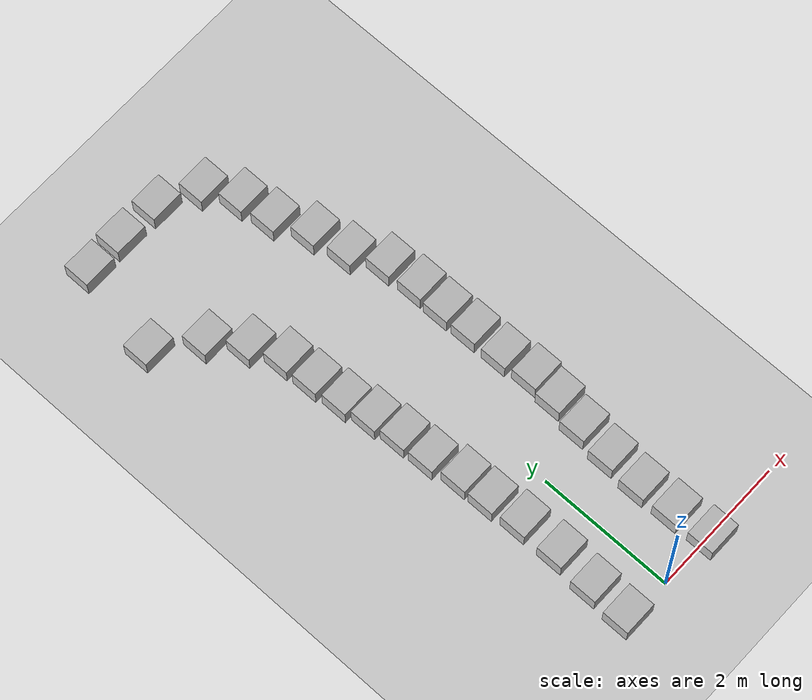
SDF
<sdf version="1.10">
 <world name="empty">
  <model name="ground_plane">
   <static>true</static>
   <link name="link">
    <collision name="collision">
     <geometry><plane><normal>0 0 1</normal><size>100 100</size></plane></geometry>
    </collision>
    <visual name="visual">
     <geometry><plane><normal>0 0 1</normal><size>100 100</size></plane></geometry>
     <material>
      <ambient>0.800000012 0.800000012 0.800000012 1</ambient>
      <diffuse>0.800000012 0.800000012 0.800000012 1</diffuse>
      <specular>0.800000012 0.800000012 0.800000012 1</specular>
     </material>
    </visual>
    <inertial>
     <mass>1</mass>
     <inertia><ixx>1</ixx><ixy>0</ixy><ixz>0</ixz><iyy>1</iyy><iyz>0</iyz><izz>1</izz></inertia>
    </inertial>
   </link>
  </model>
  <model name="cardboard_box">
   <pose>0.85478054980913054 -0.014551958283302554 0.14999943493130527 -2.4298152294027702e-19 6.8969971186888291e-19 1.2039838720076909e-19</pose>
   <link name="link">
    <inertial>
     <mass>2</mass>
     <inertia>
      <ixx>0.041666666999999998</ixx>
      <ixy>0</ixy>
      <ixz>0</ixz>
      <iyy>0.056666666999999997</iyy>
      <iyz>0</iyz>
      <izz>0.068333332999999996</izz>
     </inertia>
    </inertial>
    <collision name="collision">
     <geometry><box><size>0.5 0.40000000000000002 0.29999999999999999</size></box></geometry>
     <surface>
      <friction><ode><mu>1</mu><mu2>1</mu2></ode></friction>
      <contact>
       <ode><kp>10000000</kp><kd>1</kd><min_depth>0.001</min_depth><max_vel>0.10000000000000001</max_vel></ode>
      </contact>
     </surface>
    </collision>
    <visual name="visual">
     <pose>0 0 -0.14999999999999999 0 0 0</pose>
     <geometry>
      <mesh>
       <uri>file:///home/szu/slash_ws/src/slash_sim/gz_models/cardboard_box/model://cardboard_box/meshes/cardboard_box.dae</uri>
       <scale>1.2593189600000001 1.0074551679999999 0.75559137600000004</scale>
      </mesh>
     </geometry>
    </visual>
   </link>
   <static>false</static>
  </model>
  <model name="cardboard_box_46">
   <pose>-1.7935884309886367 8.2187235137395263 0.14999900262897667 -2.2937622448734657e-19 6.9275665197937102e-19 1.1971996887461812e-19</pose>
   <link name="link">
    <inertial>
     <mass>2</mass>
     <inertia>
      <ixx>0.041666666999999998</ixx>
      <ixy>0</ixy>
      <ixz>0</ixz>
      <iyy>0.056666666999999997</iyy>
      <iyz>0</iyz>
      <izz>0.068333332999999996</izz>
     </inertia>
    </inertial>
    <collision name="collision">
     <geometry><box><size>0.5 0.40000000000000002 0.29999999999999999</size></box></geometry>
     <surface>
      <friction><ode><mu>1</mu><mu2>1</mu2></ode></friction>
      <contact>
       <ode><kp>10000000</kp><kd>1</kd><min_depth>0.001</min_depth><max_vel>0.10000000000000001</max_vel></ode>
      </contact>
     </surface>
    </collision>
    <visual name="visual">
     <pose>0 0 -0.14999999999999999 0 0 0</pose>
     <geometry>
      <mesh>
       <uri>file:///home/szu/slash_ws/src/slash_sim/gz_models/cardboard_box/model://cardboard_box/meshes/cardboard_box.dae</uri>
       <scale>1.2593189600000001 1.0074551679999999 0.75559137600000004</scale>
      </mesh>
     </geometry>
    </visual>
   </link>
   <static>false</static>
  </model>
  <model name="cardboard_box_47">
   <pose>-1.2087740837786454 8.2336861489213327 0.14999900262897667 -2.4617464612000854e-19 6.9865286270579585e-19 1.2102648454318151e-19</pose>
   <link name="link">
    <inertial>
     <mass>2</mass>
     <inertia>
      <ixx>0.041666666999999998</ixx>
      <ixy>0</ixy>
      <ixz>0</ixz>
      <iyy>0.056666666999999997</iyy>
      <iyz>0</iyz>
      <izz>0.068333332999999996</izz>
     </inertia>
    </inertial>
    <collision name="collision">
     <geometry><box><size>0.5 0.40000000000000002 0.29999999999999999</size></box></geometry>
     <surface>
      <friction><ode><mu>1</mu><mu2>1</mu2></ode></friction>
      <contact>
       <ode><kp>10000000</kp><kd>1</kd><min_depth>0.001</min_depth><max_vel>0.10000000000000001</max_vel></ode>
      </contact>
     </surface>
    </collision>
    <visual name="visual">
     <pose>0 0 -0.14999999999999999 0 0 0</pose>
     <geometry>
      <mesh>
       <uri>file:///home/szu/slash_ws/src/slash_sim/gz_models/cardboard_box/model://cardboard_box/meshes/cardboard_box.dae</uri>
       <scale>1.2593189600000001 1.0074551679999999 0.75559137600000004</scale>
      </mesh>
     </geometry>
    </visual>
   </link>
   <static>false</static>
  </model>
  <model name="cardboard_box_48">
   <pose>-0.56632677369783013 8.2121585961199006 0.14999900262897667 -2.4617464612000854e-19 6.9865286270579585e-19 1.2102648454318151e-19</pose>
   <link name="link">
    <inertial>
     <mass>2</mass>
     <inertia>
      <ixx>0.041666666999999998</ixx>
      <ixy>0</ixy>
      <ixz>0</ixz>
      <iyy>0.056666666999999997</iyy>
      <iyz>0</iyz>
      <izz>0.068333332999999996</izz>
     </inertia>
    </inertial>
    <collision name="collision">
     <geometry><box><size>0.5 0.40000000000000002 0.29999999999999999</size></box></geometry>
     <surface>
      <friction><ode><mu>1</mu><mu2>1</mu2></ode></friction>
      <contact>
       <ode><kp>10000000</kp><kd>1</kd><min_depth>0.001</min_depth><max_vel>0.10000000000000001</max_vel></ode>
      </contact>
     </surface>
    </collision>
    <visual name="visual">
     <pose>0 0 -0.14999999999999999 0 0 0</pose>
     <geometry>
      <mesh>
       <uri>file:///home/szu/slash_ws/src/slash_sim/gz_models/cardboard_box/model://cardboard_box/meshes/cardboard_box.dae</uri>
       <scale>1.2593189600000001 1.0074551679999999 0.75559137600000004</scale>
      </mesh>
     </geometry>
    </visual>
   </link>
   <static>false</static>
  </model>
  <model name="cardboard_box_49">
   <pose>0.021360092127295394 7.9338331670076769 0.14999900262897667 -2.4395242167865708e-19 6.9722025691374854e-19 1.1980135226730827e-19</pose>
   <link name="link">
    <inertial>
     <mass>2</mass>
     <inertia>
      <ixx>0.041666666999999998</ixx>
      <ixy>0</ixy>
      <ixz>0</ixz>
      <iyy>0.056666666999999997</iyy>
      <iyz>0</iyz>
      <izz>0.068333332999999996</izz>
     </inertia>
    </inertial>
    <collision name="collision">
     <geometry><box><size>0.5 0.40000000000000002 0.29999999999999999</size></box></geometry>
     <surface>
      <friction><ode><mu>1</mu><mu2>1</mu2></ode></friction>
      <contact>
       <ode><kp>10000000</kp><kd>1</kd><min_depth>0.001</min_depth><max_vel>0.10000000000000001</max_vel></ode>
      </contact>
     </surface>
    </collision>
    <visual name="visual">
     <pose>0 0 -0.14999999999999999 0 0 0</pose>
     <geometry>
      <mesh>
       <uri>file:///home/szu/slash_ws/src/slash_sim/gz_models/cardboard_box/model://cardboard_box/meshes/cardboard_box.dae</uri>
       <scale>1.2593189600000001 1.0074551679999999 0.75559137600000004</scale>
      </mesh>
     </geometry>
    </visual>
   </link>
   <static>false</static>
  </model>
  <model name="cardboard_box_50">
   <pose>0.26269218032713981 7.4564456483916279 0.14999900262897667 -2.3882218747492828e-19 7.0060126461846494e-19 1.2009065340730555e-19</pose>
   <link name="link">
    <inertial>
     <mass>2</mass>
     <inertia>
      <ixx>0.041666666999999998</ixx>
      <ixy>0</ixy>
      <ixz>0</ixz>
      <iyy>0.056666666999999997</iyy>
      <iyz>0</iyz>
      <izz>0.068333332999999996</izz>
     </inertia>
    </inertial>
    <collision name="collision">
     <geometry><box><size>0.5 0.40000000000000002 0.29999999999999999</size></box></geometry>
     <surface>
      <friction><ode><mu>1</mu><mu2>1</mu2></ode></friction>
      <contact>
       <ode><kp>10000000</kp><kd>1</kd><min_depth>0.001</min_depth><max_vel>0.10000000000000001</max_vel></ode>
      </contact>
     </surface>
    </collision>
    <visual name="visual">
     <pose>0 0 -0.14999999999999999 0 0 0</pose>
     <geometry>
      <mesh>
       <uri>file:///home/szu/slash_ws/src/slash_sim/gz_models/cardboard_box/model://cardboard_box/meshes/cardboard_box.dae</uri>
       <scale>1.2593189600000001 1.0074551679999999 0.75559137600000004</scale>
      </mesh>
     </geometry>
    </visual>
   </link>
   <static>false</static>
  </model>
  <model name="cardboard_box_51">
   <pose>0.33874788278657286 6.9608852373941721 0.14999900262897667 -2.3882218747492828e-19 7.0060126461846494e-19 1.2009065340730555e-19</pose>
   <link name="link">
    <inertial>
     <mass>2</mass>
     <inertia>
      <ixx>0.041666666999999998</ixx>
      <ixy>0</ixy>
      <ixz>0</ixz>
      <iyy>0.056666666999999997</iyy>
      <iyz>0</iyz>
      <izz>0.068333332999999996</izz>
     </inertia>
    </inertial>
    <collision name="collision">
     <geometry><box><size>0.5 0.40000000000000002 0.29999999999999999</size></box></geometry>
     <surface>
      <friction><ode><mu>1</mu><mu2>1</mu2></ode></friction>
      <contact>
       <ode><kp>10000000</kp><kd>1</kd><min_depth>0.001</min_depth><max_vel>0.10000000000000001</max_vel></ode>
      </contact>
     </surface>
    </collision>
    <visual name="visual">
     <pose>0 0 -0.14999999999999999 0 0 0</pose>
     <geometry>
      <mesh>
       <uri>file:///home/szu/slash_ws/src/slash_sim/gz_models/cardboard_box/model://cardboard_box/meshes/cardboard_box.dae</uri>
       <scale>1.2593189600000001 1.0074551679999999 0.75559137600000004</scale>
      </mesh>
     </geometry>
    </visual>
   </link>
   <static>false</static>
  </model>
  <model name="cardboard_box_52">
   <pose>0.5440949118479681 6.4434636809012735 0.14999900262897667 -2.3882218747492828e-19 7.0060126461846494e-19 1.2009065340730555e-19</pose>
   <link name="link">
    <inertial>
     <mass>2</mass>
     <inertia>
      <ixx>0.041666666999999998</ixx>
      <ixy>0</ixy>
      <ixz>0</ixz>
      <iyy>0.056666666999999997</iyy>
      <iyz>0</iyz>
      <izz>0.068333332999999996</izz>
     </inertia>
    </inertial>
    <collision name="collision">
     <geometry><box><size>0.5 0.40000000000000002 0.29999999999999999</size></box></geometry>
     <surface>
      <friction><ode><mu>1</mu><mu2>1</mu2></ode></friction>
      <contact>
       <ode><kp>10000000</kp><kd>1</kd><min_depth>0.001</min_depth><max_vel>0.10000000000000001</max_vel></ode>
      </contact>
     </surface>
    </collision>
    <visual name="visual">
     <pose>0 0 -0.14999999999999999 0 0 0</pose>
     <geometry>
      <mesh>
       <uri>file:///home/szu/slash_ws/src/slash_sim/gz_models/cardboard_box/model://cardboard_box/meshes/cardboard_box.dae</uri>
       <scale>1.2593189600000001 1.0074551679999999 0.75559137600000004</scale>
      </mesh>
     </geometry>
    </visual>
   </link>
   <static>false</static>
  </model>
  <model name="cardboard_box_53">
   <pose>0.65526486721253629 5.9114579428692835 0.14999900262897667 -2.3882218747492828e-19 7.0060126461846494e-19 1.2009065340730555e-19</pose>
   <link name="link">
    <inertial>
     <mass>2</mass>
     <inertia>
      <ixx>0.041666666999999998</ixx>
      <ixy>0</ixy>
      <ixz>0</ixz>
      <iyy>0.056666666999999997</iyy>
      <iyz>0</iyz>
      <izz>0.068333332999999996</izz>
     </inertia>
    </inertial>
    <collision name="collision">
     <geometry><box><size>0.5 0.40000000000000002 0.29999999999999999</size></box></geometry>
     <surface>
      <friction><ode><mu>1</mu><mu2>1</mu2></ode></friction>
      <contact>
       <ode><kp>10000000</kp><kd>1</kd><min_depth>0.001</min_depth><max_vel>0.10000000000000001</max_vel></ode>
      </contact>
     </surface>
    </collision>
    <visual name="visual">
     <pose>0 0 -0.14999999999999999 0 0 0</pose>
     <geometry>
      <mesh>
       <uri>file:///home/szu/slash_ws/src/slash_sim/gz_models/cardboard_box/model://cardboard_box/meshes/cardboard_box.dae</uri>
       <scale>1.2593189600000001 1.0074551679999999 0.75559137600000004</scale>
      </mesh>
     </geometry>
    </visual>
   </link>
   <static>false</static>
  </model>
  <model name="cardboard_box_54">
   <pose>0.87551529019741647 5.4383617470887007 0.14999900262897667 -2.5359663706721442e-19 6.9509327183405399e-19 1.1976656697632282e-19</pose>
   <link name="link">
    <inertial>
     <mass>2</mass>
     <inertia>
      <ixx>0.041666666999999998</ixx>
      <ixy>0</ixy>
      <ixz>0</ixz>
      <iyy>0.056666666999999997</iyy>
      <iyz>0</iyz>
      <izz>0.068333332999999996</izz>
     </inertia>
    </inertial>
    <collision name="collision">
     <geometry><box><size>0.5 0.40000000000000002 0.29999999999999999</size></box></geometry>
     <surface>
      <friction><ode><mu>1</mu><mu2>1</mu2></ode></friction>
      <contact>
       <ode><kp>10000000</kp><kd>1</kd><min_depth>0.001</min_depth><max_vel>0.10000000000000001</max_vel></ode>
      </contact>
     </surface>
    </collision>
    <visual name="visual">
     <pose>0 0 -0.14999999999999999 0 0 0</pose>
     <geometry>
      <mesh>
       <uri>file:///home/szu/slash_ws/src/slash_sim/gz_models/cardboard_box/model://cardboard_box/meshes/cardboard_box.dae</uri>
       <scale>1.2593189600000001 1.0074551679999999 0.75559137600000004</scale>
      </mesh>
     </geometry>
    </visual>
   </link>
   <static>false</static>
  </model>
  <model name="cardboard_box_55">
   <pose>0.91816519293624421 4.9305026438201534 0.14999900262897667 -2.3882218747492828e-19 7.0060126461846494e-19 1.2009065340730555e-19</pose>
   <link name="link">
    <inertial>
     <mass>2</mass>
     <inertia>
      <ixx>0.041666666999999998</ixx>
      <ixy>0</ixy>
      <ixz>0</ixz>
      <iyy>0.056666666999999997</iyy>
      <iyz>0</iyz>
      <izz>0.068333332999999996</izz>
     </inertia>
    </inertial>
    <collision name="collision">
     <geometry><box><size>0.5 0.40000000000000002 0.29999999999999999</size></box></geometry>
     <surface>
      <friction><ode><mu>1</mu><mu2>1</mu2></ode></friction>
      <contact>
       <ode><kp>10000000</kp><kd>1</kd><min_depth>0.001</min_depth><max_vel>0.10000000000000001</max_vel></ode>
      </contact>
     </surface>
    </collision>
    <visual name="visual">
     <pose>0 0 -0.14999999999999999 0 0 0</pose>
     <geometry>
      <mesh>
       <uri>file:///home/szu/slash_ws/src/slash_sim/gz_models/cardboard_box/model://cardboard_box/meshes/cardboard_box.dae</uri>
       <scale>1.2593189600000001 1.0074551679999999 0.75559137600000004</scale>
      </mesh>
     </geometry>
    </visual>
   </link>
   <static>false</static>
  </model>
  <model name="cardboard_box_56">
   <pose>0.91309613807656531 4.476514660825389 0.14999900262897667 -2.5359663706721442e-19 6.9509327183405399e-19 1.1976656697632282e-19</pose>
   <link name="link">
    <inertial>
     <mass>2</mass>
     <inertia>
      <ixx>0.041666666999999998</ixx>
      <ixy>0</ixy>
      <ixz>0</ixz>
      <iyy>0.056666666999999997</iyy>
      <iyz>0</iyz>
      <izz>0.068333332999999996</izz>
     </inertia>
    </inertial>
    <collision name="collision">
     <geometry><box><size>0.5 0.40000000000000002 0.29999999999999999</size></box></geometry>
     <surface>
      <friction><ode><mu>1</mu><mu2>1</mu2></ode></friction>
      <contact>
       <ode><kp>10000000</kp><kd>1</kd><min_depth>0.001</min_depth><max_vel>0.10000000000000001</max_vel></ode>
      </contact>
     </surface>
    </collision>
    <visual name="visual">
     <pose>0 0 -0.14999999999999999 0 0 0</pose>
     <geometry>
      <mesh>
       <uri>file:///home/szu/slash_ws/src/slash_sim/gz_models/cardboard_box/model://cardboard_box/meshes/cardboard_box.dae</uri>
       <scale>1.2593189600000001 1.0074551679999999 0.75559137600000004</scale>
      </mesh>
     </geometry>
    </visual>
   </link>
   <static>false</static>
  </model>
  <model name="cardboard_box_57">
   <pose>0.93159236528382805 4.0141731291629892 0.14999900262897667 -2.3882218747492828e-19 7.0060126461846494e-19 1.2009065340730555e-19</pose>
   <link name="link">
    <inertial>
     <mass>2</mass>
     <inertia>
      <ixx>0.041666666999999998</ixx>
      <ixy>0</ixy>
      <ixz>0</ixz>
      <iyy>0.056666666999999997</iyy>
      <iyz>0</iyz>
      <izz>0.068333332999999996</izz>
     </inertia>
    </inertial>
    <collision name="collision">
     <geometry><box><size>0.5 0.40000000000000002 0.29999999999999999</size></box></geometry>
     <surface>
      <friction><ode><mu>1</mu><mu2>1</mu2></ode></friction>
      <contact>
       <ode><kp>10000000</kp><kd>1</kd><min_depth>0.001</min_depth><max_vel>0.10000000000000001</max_vel></ode>
      </contact>
     </surface>
    </collision>
    <visual name="visual">
     <pose>0 0 -0.14999999999999999 0 0 0</pose>
     <geometry>
      <mesh>
       <uri>file:///home/szu/slash_ws/src/slash_sim/gz_models/cardboard_box/model://cardboard_box/meshes/cardboard_box.dae</uri>
       <scale>1.2593189600000001 1.0074551679999999 0.75559137600000004</scale>
      </mesh>
     </geometry>
    </visual>
   </link>
   <static>false</static>
  </model>
  <model name="cardboard_box_58">
   <pose>0.94446233323447992 3.5106656584279277 0.14999900262897667 -2.3882218747492828e-19 7.0060126461846494e-19 1.2009065340730555e-19</pose>
   <link name="link">
    <inertial>
     <mass>2</mass>
     <inertia>
      <ixx>0.041666666999999998</ixx>
      <ixy>0</ixy>
      <ixz>0</ixz>
      <iyy>0.056666666999999997</iyy>
      <iyz>0</iyz>
      <izz>0.068333332999999996</izz>
     </inertia>
    </inertial>
    <collision name="collision">
     <geometry><box><size>0.5 0.40000000000000002 0.29999999999999999</size></box></geometry>
     <surface>
      <friction><ode><mu>1</mu><mu2>1</mu2></ode></friction>
      <contact>
       <ode><kp>10000000</kp><kd>1</kd><min_depth>0.001</min_depth><max_vel>0.10000000000000001</max_vel></ode>
      </contact>
     </surface>
    </collision>
    <visual name="visual">
     <pose>0 0 -0.14999999999999999 0 0 0</pose>
     <geometry>
      <mesh>
       <uri>file:///home/szu/slash_ws/src/slash_sim/gz_models/cardboard_box/model://cardboard_box/meshes/cardboard_box.dae</uri>
       <scale>1.2593189600000001 1.0074551679999999 0.75559137600000004</scale>
      </mesh>
     </geometry>
    </visual>
   </link>
   <static>false</static>
  </model>
  <model name="cardboard_box_59">
   <pose>0.99584717082176488 3.0373309935618567 0.14999900262897667 -2.3882218747492828e-19 7.0060126461846494e-19 1.2009065340730555e-19</pose>
   <link name="link">
    <inertial>
     <mass>2</mass>
     <inertia>
      <ixx>0.041666666999999998</ixx>
      <ixy>0</ixy>
      <ixz>0</ixz>
      <iyy>0.056666666999999997</iyy>
      <iyz>0</iyz>
      <izz>0.068333332999999996</izz>
     </inertia>
    </inertial>
    <collision name="collision">
     <geometry><box><size>0.5 0.40000000000000002 0.29999999999999999</size></box></geometry>
     <surface>
      <friction><ode><mu>1</mu><mu2>1</mu2></ode></friction>
      <contact>
       <ode><kp>10000000</kp><kd>1</kd><min_depth>0.001</min_depth><max_vel>0.10000000000000001</max_vel></ode>
      </contact>
     </surface>
    </collision>
    <visual name="visual">
     <pose>0 0 -0.14999999999999999 0 0 0</pose>
     <geometry>
      <mesh>
       <uri>file:///home/szu/slash_ws/src/slash_sim/gz_models/cardboard_box/model://cardboard_box/meshes/cardboard_box.dae</uri>
       <scale>1.2593189600000001 1.0074551679999999 0.75559137600000004</scale>
      </mesh>
     </geometry>
    </visual>
   </link>
   <static>false</static>
  </model>
  <model name="cardboard_box_60">
   <pose>0.82198017712631777 0.5401904913757023 0.14999900262897667 -2.5123466248672699e-19 6.9657739388306372e-19 1.209647203754103e-19</pose>
   <link name="link">
    <inertial>
     <mass>2</mass>
     <inertia>
      <ixx>0.041666666999999998</ixx>
      <ixy>0</ixy>
      <ixz>0</ixz>
      <iyy>0.056666666999999997</iyy>
      <iyz>0</iyz>
      <izz>0.068333332999999996</izz>
     </inertia>
    </inertial>
    <collision name="collision">
     <geometry><box><size>0.5 0.40000000000000002 0.29999999999999999</size></box></geometry>
     <surface>
      <friction><ode><mu>1</mu><mu2>1</mu2></ode></friction>
      <contact>
       <ode><kp>10000000</kp><kd>1</kd><min_depth>0.001</min_depth><max_vel>0.10000000000000001</max_vel></ode>
      </contact>
     </surface>
    </collision>
    <visual name="visual">
     <pose>0 0 -0.14999999999999999 0 0 0</pose>
     <geometry>
      <mesh>
       <uri>file:///home/szu/slash_ws/src/slash_sim/gz_models/cardboard_box/model://cardboard_box/meshes/cardboard_box.dae</uri>
       <scale>1.2593189600000001 1.0074551679999999 0.75559137600000004</scale>
      </mesh>
     </geometry>
    </visual>
   </link>
   <static>false</static>
  </model>
  <model name="cardboard_box_61">
   <pose>0.79834979420349206 1.0697583981043375 0.14999900262897667 -2.4340092493284308e-19 6.9279252550571232e-19 1.2027156982183783e-19</pose>
   <link name="link">
    <inertial>
     <mass>2</mass>
     <inertia>
      <ixx>0.041666666999999998</ixx>
      <ixy>0</ixy>
      <ixz>0</ixz>
      <iyy>0.056666666999999997</iyy>
      <iyz>0</iyz>
      <izz>0.068333332999999996</izz>
     </inertia>
    </inertial>
    <collision name="collision">
     <geometry><box><size>0.5 0.40000000000000002 0.29999999999999999</size></box></geometry>
     <surface>
      <friction><ode><mu>1</mu><mu2>1</mu2></ode></friction>
      <contact>
       <ode><kp>10000000</kp><kd>1</kd><min_depth>0.001</min_depth><max_vel>0.10000000000000001</max_vel></ode>
      </contact>
     </surface>
    </collision>
    <visual name="visual">
     <pose>0 0 -0.14999999999999999 0 0 0</pose>
     <geometry>
      <mesh>
       <uri>file:///home/szu/slash_ws/src/slash_sim/gz_models/cardboard_box/model://cardboard_box/meshes/cardboard_box.dae</uri>
       <scale>1.2593189600000001 1.0074551679999999 0.75559137600000004</scale>
      </mesh>
     </geometry>
    </visual>
   </link>
   <static>false</static>
  </model>
  <model name="cardboard_box_62">
   <pose>0.83112122390482024 1.6083395448454105 0.14999900262897667 -2.4340092493284308e-19 6.9279252550571232e-19 1.2027156982183783e-19</pose>
   <link name="link">
    <inertial>
     <mass>2</mass>
     <inertia>
      <ixx>0.041666666999999998</ixx>
      <ixy>0</ixy>
      <ixz>0</ixz>
      <iyy>0.056666666999999997</iyy>
      <iyz>0</iyz>
      <izz>0.068333332999999996</izz>
     </inertia>
    </inertial>
    <collision name="collision">
     <geometry><box><size>0.5 0.40000000000000002 0.29999999999999999</size></box></geometry>
     <surface>
      <friction><ode><mu>1</mu><mu2>1</mu2></ode></friction>
      <contact>
       <ode><kp>10000000</kp><kd>1</kd><min_depth>0.001</min_depth><max_vel>0.10000000000000001</max_vel></ode>
      </contact>
     </surface>
    </collision>
    <visual name="visual">
     <pose>0 0 -0.14999999999999999 0 0 0</pose>
     <geometry>
      <mesh>
       <uri>file:///home/szu/slash_ws/src/slash_sim/gz_models/cardboard_box/model://cardboard_box/meshes/cardboard_box.dae</uri>
       <scale>1.2593189600000001 1.0074551679999999 0.75559137600000004</scale>
      </mesh>
     </geometry>
    </visual>
   </link>
   <static>false</static>
  </model>
  <model name="cardboard_box_63">
   <pose>0.88132512330887003 2.128271915140667 0.14999900262897667 -2.3858620367426665e-19 6.7646396520384908e-19 1.21404117423132e-19</pose>
   <link name="link">
    <inertial>
     <mass>2</mass>
     <inertia>
      <ixx>0.041666666999999998</ixx>
      <ixy>0</ixy>
      <ixz>0</ixz>
      <iyy>0.056666666999999997</iyy>
      <iyz>0</iyz>
      <izz>0.068333332999999996</izz>
     </inertia>
    </inertial>
    <collision name="collision">
     <geometry><box><size>0.5 0.40000000000000002 0.29999999999999999</size></box></geometry>
     <surface>
      <friction><ode><mu>1</mu><mu2>1</mu2></ode></friction>
      <contact>
       <ode><kp>10000000</kp><kd>1</kd><min_depth>0.001</min_depth><max_vel>0.10000000000000001</max_vel></ode>
      </contact>
     </surface>
    </collision>
    <visual name="visual">
     <pose>0 0 -0.14999999999999999 0 0 0</pose>
     <geometry>
      <mesh>
       <uri>file:///home/szu/slash_ws/src/slash_sim/gz_models/cardboard_box/model://cardboard_box/meshes/cardboard_box.dae</uri>
       <scale>1.2593189600000001 1.0074551679999999 0.75559137600000004</scale>
      </mesh>
     </geometry>
    </visual>
   </link>
   <static>false</static>
  </model>
  <model name="cardboard_box_64">
   <pose>0.95647435843473938 2.6024799878104274 0.14999900262897667 -2.5359663706721442e-19 6.9509327183405399e-19 1.1976656697632282e-19</pose>
   <link name="link">
    <inertial>
     <mass>2</mass>
     <inertia>
      <ixx>0.041666666999999998</ixx>
      <ixy>0</ixy>
      <ixz>0</ixz>
      <iyy>0.056666666999999997</iyy>
      <iyz>0</iyz>
      <izz>0.068333332999999996</izz>
     </inertia>
    </inertial>
    <collision name="collision">
     <geometry><box><size>0.5 0.40000000000000002 0.29999999999999999</size></box></geometry>
     <surface>
      <friction><ode><mu>1</mu><mu2>1</mu2></ode></friction>
      <contact>
       <ode><kp>10000000</kp><kd>1</kd><min_depth>0.001</min_depth><max_vel>0.10000000000000001</max_vel></ode>
      </contact>
     </surface>
    </collision>
    <visual name="visual">
     <pose>0 0 -0.14999999999999999 0 0 0</pose>
     <geometry>
      <mesh>
       <uri>file:///home/szu/slash_ws/src/slash_sim/gz_models/cardboard_box/model://cardboard_box/meshes/cardboard_box.dae</uri>
       <scale>1.2593189600000001 1.0074551679999999 0.75559137600000004</scale>
      </mesh>
     </geometry>
    </visual>
   </link>
   <static>false</static>
  </model>
  <model name="cardboard_box_68">
   <pose>-0.62631138290141819 0.090293146759368614 0.14999900262897667 -2.5080923996314153e-19 6.9013454270577445e-19 1.2087524920852755e-19</pose>
   <link name="link">
    <inertial>
     <mass>2</mass>
     <inertia>
      <ixx>0.041666666999999998</ixx>
      <ixy>0</ixy>
      <ixz>0</ixz>
      <iyy>0.056666666999999997</iyy>
      <iyz>0</iyz>
      <izz>0.068333332999999996</izz>
     </inertia>
    </inertial>
    <collision name="collision">
     <geometry><box><size>0.5 0.40000000000000002 0.29999999999999999</size></box></geometry>
     <surface>
      <friction><ode><mu>1</mu><mu2>1</mu2></ode></friction>
      <contact>
       <ode><kp>10000000</kp><kd>1</kd><min_depth>0.001</min_depth><max_vel>0.10000000000000001</max_vel></ode>
      </contact>
     </surface>
    </collision>
    <visual name="visual">
     <pose>0 0 -0.14999999999999999 0 0 0</pose>
     <geometry>
      <mesh>
       <uri>file:///home/szu/slash_ws/src/slash_sim/gz_models/cardboard_box/model://cardboard_box/meshes/cardboard_box.dae</uri>
       <scale>1.2593189600000001 1.0074551679999999 0.75559137600000004</scale>
      </mesh>
     </geometry>
    </visual>
   </link>
   <static>false</static>
  </model>
  <model name="cardboard_box_69">
   <pose>-0.59720349101784165 0.64826107985927184 0.14999900262897667 -2.5123466248672699e-19 6.9657739388306372e-19 1.209647203754103e-19</pose>
   <link name="link">
    <inertial>
     <mass>2</mass>
     <inertia>
      <ixx>0.041666666999999998</ixx>
      <ixy>0</ixy>
      <ixz>0</ixz>
      <iyy>0.056666666999999997</iyy>
      <iyz>0</iyz>
      <izz>0.068333332999999996</izz>
     </inertia>
    </inertial>
    <collision name="collision">
     <geometry><box><size>0.5 0.40000000000000002 0.29999999999999999</size></box></geometry>
     <surface>
      <friction><ode><mu>1</mu><mu2>1</mu2></ode></friction>
      <contact>
       <ode><kp>10000000</kp><kd>1</kd><min_depth>0.001</min_depth><max_vel>0.10000000000000001</max_vel></ode>
      </contact>
     </surface>
    </collision>
    <visual name="visual">
     <pose>0 0 -0.14999999999999999 0 0 0</pose>
     <geometry>
      <mesh>
       <uri>file:///home/szu/slash_ws/src/slash_sim/gz_models/cardboard_box/model://cardboard_box/meshes/cardboard_box.dae</uri>
       <scale>1.2593189600000001 1.0074551679999999 0.75559137600000004</scale>
      </mesh>
     </geometry>
    </visual>
   </link>
   <static>false</static>
  </model>
  <model name="cardboard_box_70">
   <pose>-0.55001480811577075 1.2437819390799885 0.14999900262897667 -2.4340092493284308e-19 6.9279252550571232e-19 1.2027156982183783e-19</pose>
   <link name="link">
    <inertial>
     <mass>2</mass>
     <inertia>
      <ixx>0.041666666999999998</ixx>
      <ixy>0</ixy>
      <ixz>0</ixz>
      <iyy>0.056666666999999997</iyy>
      <iyz>0</iyz>
      <izz>0.068333332999999996</izz>
     </inertia>
    </inertial>
    <collision name="collision">
     <geometry><box><size>0.5 0.40000000000000002 0.29999999999999999</size></box></geometry>
     <surface>
      <friction><ode><mu>1</mu><mu2>1</mu2></ode></friction>
      <contact>
       <ode><kp>10000000</kp><kd>1</kd><min_depth>0.001</min_depth><max_vel>0.10000000000000001</max_vel></ode>
      </contact>
     </surface>
    </collision>
    <visual name="visual">
     <pose>0 0 -0.14999999999999999 0 0 0</pose>
     <geometry>
      <mesh>
       <uri>file:///home/szu/slash_ws/src/slash_sim/gz_models/cardboard_box/model://cardboard_box/meshes/cardboard_box.dae</uri>
       <scale>1.2593189600000001 1.0074551679999999 0.75559137600000004</scale>
      </mesh>
     </geometry>
    </visual>
   </link>
   <static>false</static>
  </model>
  <model name="cardboard_box_95">
   <pose>-2.0690194069351291 6.9030842846077043 0.14999900262897667 -2.3882218747492828e-19 7.0060126461846494e-19 1.2009065340730555e-19</pose>
   <link name="link">
    <inertial>
     <mass>2</mass>
     <inertia>
      <ixx>0.041666666999999998</ixx>
      <ixy>0</ixy>
      <ixz>0</ixz>
      <iyy>0.056666666999999997</iyy>
      <iyz>0</iyz>
      <izz>0.068333332999999996</izz>
     </inertia>
    </inertial>
    <collision name="collision">
     <geometry><box><size>0.5 0.40000000000000002 0.29999999999999999</size></box></geometry>
     <surface>
      <friction><ode><mu>1</mu><mu2>1</mu2></ode></friction>
      <contact>
       <ode><kp>10000000</kp><kd>1</kd><min_depth>0.001</min_depth><max_vel>0.10000000000000001</max_vel></ode>
      </contact>
     </surface>
    </collision>
    <visual name="visual">
     <pose>0 0 -0.14999999999999999 0 0 0</pose>
     <geometry>
      <mesh>
       <uri>file:///home/szu/slash_ws/src/slash_sim/gz_models/cardboard_box/model://cardboard_box/meshes/cardboard_box.dae</uri>
       <scale>1.2593189600000001 1.0074551679999999 0.75559137600000004</scale>
      </mesh>
     </geometry>
    </visual>
   </link>
   <static>false</static>
  </model>
  <model name="cardboard_box_96">
   <pose>-1.4776488903073177 6.4388836986697555 0.14999900262897667 -2.3882218747492828e-19 7.0060126461846494e-19 1.2009065340730555e-19</pose>
   <link name="link">
    <inertial>
     <mass>2</mass>
     <inertia>
      <ixx>0.041666666999999998</ixx>
      <ixy>0</ixy>
      <ixz>0</ixz>
      <iyy>0.056666666999999997</iyy>
      <iyz>0</iyz>
      <izz>0.068333332999999996</izz>
     </inertia>
    </inertial>
    <collision name="collision">
     <geometry><box><size>0.5 0.40000000000000002 0.29999999999999999</size></box></geometry>
     <surface>
      <friction><ode><mu>1</mu><mu2>1</mu2></ode></friction>
      <contact>
       <ode><kp>10000000</kp><kd>1</kd><min_depth>0.001</min_depth><max_vel>0.10000000000000001</max_vel></ode>
      </contact>
     </surface>
    </collision>
    <visual name="visual">
     <pose>0 0 -0.14999999999999999 0 0 0</pose>
     <geometry>
      <mesh>
       <uri>file:///home/szu/slash_ws/src/slash_sim/gz_models/cardboard_box/model://cardboard_box/meshes/cardboard_box.dae</uri>
       <scale>1.2593189600000001 1.0074551679999999 0.75559137600000004</scale>
      </mesh>
     </geometry>
    </visual>
   </link>
   <static>false</static>
  </model>
  <model name="cardboard_box_97">
   <pose>-1.1485471511485887 5.9833137949733723 0.14999900262897667 -2.3882218747492828e-19 7.0060126461846494e-19 1.2009065340730555e-19</pose>
   <link name="link">
    <inertial>
     <mass>2</mass>
     <inertia>
      <ixx>0.041666666999999998</ixx>
      <ixy>0</ixy>
      <ixz>0</ixz>
      <iyy>0.056666666999999997</iyy>
      <iyz>0</iyz>
      <izz>0.068333332999999996</izz>
     </inertia>
    </inertial>
    <collision name="collision">
     <geometry><box><size>0.5 0.40000000000000002 0.29999999999999999</size></box></geometry>
     <surface>
      <friction><ode><mu>1</mu><mu2>1</mu2></ode></friction>
      <contact>
       <ode><kp>10000000</kp><kd>1</kd><min_depth>0.001</min_depth><max_vel>0.10000000000000001</max_vel></ode>
      </contact>
     </surface>
    </collision>
    <visual name="visual">
     <pose>0 0 -0.14999999999999999 0 0 0</pose>
     <geometry>
      <mesh>
       <uri>file:///home/szu/slash_ws/src/slash_sim/gz_models/cardboard_box/model://cardboard_box/meshes/cardboard_box.dae</uri>
       <scale>1.2593189600000001 1.0074551679999999 0.75559137600000004</scale>
      </mesh>
     </geometry>
    </visual>
   </link>
   <static>false</static>
  </model>
  <model name="cardboard_box_98">
   <pose>-0.95397120004261593 5.5170912097815146 0.14999900262897667 -2.3882218747492828e-19 7.0060126461846494e-19 1.2009065340730555e-19</pose>
   <link name="link">
    <inertial>
     <mass>2</mass>
     <inertia>
      <ixx>0.041666666999999998</ixx>
      <ixy>0</ixy>
      <ixz>0</ixz>
      <iyy>0.056666666999999997</iyy>
      <iyz>0</iyz>
      <izz>0.068333332999999996</izz>
     </inertia>
    </inertial>
    <collision name="collision">
     <geometry><box><size>0.5 0.40000000000000002 0.29999999999999999</size></box></geometry>
     <surface>
      <friction><ode><mu>1</mu><mu2>1</mu2></ode></friction>
      <contact>
       <ode><kp>10000000</kp><kd>1</kd><min_depth>0.001</min_depth><max_vel>0.10000000000000001</max_vel></ode>
      </contact>
     </surface>
    </collision>
    <visual name="visual">
     <pose>0 0 -0.14999999999999999 0 0 0</pose>
     <geometry>
      <mesh>
       <uri>file:///home/szu/slash_ws/src/slash_sim/gz_models/cardboard_box/model://cardboard_box/meshes/cardboard_box.dae</uri>
       <scale>1.2593189600000001 1.0074551679999999 0.75559137600000004</scale>
      </mesh>
     </geometry>
    </visual>
   </link>
   <static>false</static>
  </model>
  <model name="cardboard_box_99">
   <pose>-0.92137303733696019 5.0482812568823379 0.14999900262897667 -2.3882218747492828e-19 7.0060126461846494e-19 1.2009065340730555e-19</pose>
   <link name="link">
    <inertial>
     <mass>2</mass>
     <inertia>
      <ixx>0.041666666999999998</ixx>
      <ixy>0</ixy>
      <ixz>0</ixz>
      <iyy>0.056666666999999997</iyy>
      <iyz>0</iyz>
      <izz>0.068333332999999996</izz>
     </inertia>
    </inertial>
    <collision name="collision">
     <geometry><box><size>0.5 0.40000000000000002 0.29999999999999999</size></box></geometry>
     <surface>
      <friction><ode><mu>1</mu><mu2>1</mu2></ode></friction>
      <contact>
       <ode><kp>10000000</kp><kd>1</kd><min_depth>0.001</min_depth><max_vel>0.10000000000000001</max_vel></ode>
      </contact>
     </surface>
    </collision>
    <visual name="visual">
     <pose>0 0 -0.14999999999999999 0 0 0</pose>
     <geometry>
      <mesh>
       <uri>file:///home/szu/slash_ws/src/slash_sim/gz_models/cardboard_box/model://cardboard_box/meshes/cardboard_box.dae</uri>
       <scale>1.2593189600000001 1.0074551679999999 0.75559137600000004</scale>
      </mesh>
     </geometry>
    </visual>
   </link>
   <static>false</static>
  </model>
  <model name="cardboard_box_100">
   <pose>-0.86928088964042383 4.5862997407608663 0.14999900262897667 -2.3882218747492828e-19 7.0060126461846494e-19 1.2009065340730555e-19</pose>
   <link name="link">
    <inertial>
     <mass>2</mass>
     <inertia>
      <ixx>0.041666666999999998</ixx>
      <ixy>0</ixy>
      <ixz>0</ixz>
      <iyy>0.056666666999999997</iyy>
      <iyz>0</iyz>
      <izz>0.068333332999999996</izz>
     </inertia>
    </inertial>
    <collision name="collision">
     <geometry><box><size>0.5 0.40000000000000002 0.29999999999999999</size></box></geometry>
     <surface>
      <friction><ode><mu>1</mu><mu2>1</mu2></ode></friction>
      <contact>
       <ode><kp>10000000</kp><kd>1</kd><min_depth>0.001</min_depth><max_vel>0.10000000000000001</max_vel></ode>
      </contact>
     </surface>
    </collision>
    <visual name="visual">
     <pose>0 0 -0.14999999999999999 0 0 0</pose>
     <geometry>
      <mesh>
       <uri>file:///home/szu/slash_ws/src/slash_sim/gz_models/cardboard_box/model://cardboard_box/meshes/cardboard_box.dae</uri>
       <scale>1.2593189600000001 1.0074551679999999 0.75559137600000004</scale>
      </mesh>
     </geometry>
    </visual>
   </link>
   <static>false</static>
  </model>
  <model name="cardboard_box_101">
   <pose>-0.78709177697429711 4.1592543323838846 0.14999900262897667 -2.3882218747492828e-19 7.0060126461846494e-19 1.2009065340730555e-19</pose>
   <link name="link">
    <inertial>
     <mass>2</mass>
     <inertia>
      <ixx>0.041666666999999998</ixx>
      <ixy>0</ixy>
      <ixz>0</ixz>
      <iyy>0.056666666999999997</iyy>
      <iyz>0</iyz>
      <izz>0.068333332999999996</izz>
     </inertia>
    </inertial>
    <collision name="collision">
     <geometry><box><size>0.5 0.40000000000000002 0.29999999999999999</size></box></geometry>
     <surface>
      <friction><ode><mu>1</mu><mu2>1</mu2></ode></friction>
      <contact>
       <ode><kp>10000000</kp><kd>1</kd><min_depth>0.001</min_depth><max_vel>0.10000000000000001</max_vel></ode>
      </contact>
     </surface>
    </collision>
    <visual name="visual">
     <pose>0 0 -0.14999999999999999 0 0 0</pose>
     <geometry>
      <mesh>
       <uri>file:///home/szu/slash_ws/src/slash_sim/gz_models/cardboard_box/model://cardboard_box/meshes/cardboard_box.dae</uri>
       <scale>1.2593189600000001 1.0074551679999999 0.75559137600000004</scale>
      </mesh>
     </geometry>
    </visual>
   </link>
   <static>false</static>
  </model>
  <model name="cardboard_box_102">
   <pose>-0.72406707434266304 3.7219831390989695 0.14999900262897667 -2.3882218747492828e-19 7.0060126461846494e-19 1.2009065340730555e-19</pose>
   <link name="link">
    <inertial>
     <mass>2</mass>
     <inertia>
      <ixx>0.041666666999999998</ixx>
      <ixy>0</ixy>
      <ixz>0</ixz>
      <iyy>0.056666666999999997</iyy>
      <iyz>0</iyz>
      <izz>0.068333332999999996</izz>
     </inertia>
    </inertial>
    <collision name="collision">
     <geometry><box><size>0.5 0.40000000000000002 0.29999999999999999</size></box></geometry>
     <surface>
      <friction><ode><mu>1</mu><mu2>1</mu2></ode></friction>
      <contact>
       <ode><kp>10000000</kp><kd>1</kd><min_depth>0.001</min_depth><max_vel>0.10000000000000001</max_vel></ode>
      </contact>
     </surface>
    </collision>
    <visual name="visual">
     <pose>0 0 -0.14999999999999999 0 0 0</pose>
     <geometry>
      <mesh>
       <uri>file:///home/szu/slash_ws/src/slash_sim/gz_models/cardboard_box/model://cardboard_box/meshes/cardboard_box.dae</uri>
       <scale>1.2593189600000001 1.0074551679999999 0.75559137600000004</scale>
      </mesh>
     </geometry>
    </visual>
   </link>
   <static>false</static>
  </model>
  <model name="cardboard_box_103">
   <pose>-0.69973319592490313 3.265503051477646 0.14999900262897667 -2.3882218747492828e-19 7.0060126461846494e-19 1.2009065340730555e-19</pose>
   <link name="link">
    <inertial>
     <mass>2</mass>
     <inertia>
      <ixx>0.041666666999999998</ixx>
      <ixy>0</ixy>
      <ixz>0</ixz>
      <iyy>0.056666666999999997</iyy>
      <iyz>0</iyz>
      <izz>0.068333332999999996</izz>
     </inertia>
    </inertial>
    <collision name="collision">
     <geometry><box><size>0.5 0.40000000000000002 0.29999999999999999</size></box></geometry>
     <surface>
      <friction><ode><mu>1</mu><mu2>1</mu2></ode></friction>
      <contact>
       <ode><kp>10000000</kp><kd>1</kd><min_depth>0.001</min_depth><max_vel>0.10000000000000001</max_vel></ode>
      </contact>
     </surface>
    </collision>
    <visual name="visual">
     <pose>0 0 -0.14999999999999999 0 0 0</pose>
     <geometry>
      <mesh>
       <uri>file:///home/szu/slash_ws/src/slash_sim/gz_models/cardboard_box/model://cardboard_box/meshes/cardboard_box.dae</uri>
       <scale>1.2593189600000001 1.0074551679999999 0.75559137600000004</scale>
      </mesh>
     </geometry>
    </visual>
   </link>
   <static>false</static>
  </model>
  <model name="cardboard_box_104">
   <pose>-0.61831254581476969 2.7867025634905307 0.14999900262897667 -2.3882218747492828e-19 7.0060126461846494e-19 1.2009065340730555e-19</pose>
   <link name="link">
    <inertial>
     <mass>2</mass>
     <inertia>
      <ixx>0.041666666999999998</ixx>
      <ixy>0</ixy>
      <ixz>0</ixz>
      <iyy>0.056666666999999997</iyy>
      <iyz>0</iyz>
      <izz>0.068333332999999996</izz>
     </inertia>
    </inertial>
    <collision name="collision">
     <geometry><box><size>0.5 0.40000000000000002 0.29999999999999999</size></box></geometry>
     <surface>
      <friction><ode><mu>1</mu><mu2>1</mu2></ode></friction>
      <contact>
       <ode><kp>10000000</kp><kd>1</kd><min_depth>0.001</min_depth><max_vel>0.10000000000000001</max_vel></ode>
      </contact>
     </surface>
    </collision>
    <visual name="visual">
     <pose>0 0 -0.14999999999999999 0 0 0</pose>
     <geometry>
      <mesh>
       <uri>file:///home/szu/slash_ws/src/slash_sim/gz_models/cardboard_box/model://cardboard_box/meshes/cardboard_box.dae</uri>
       <scale>1.2593189600000001 1.0074551679999999 0.75559137600000004</scale>
      </mesh>
     </geometry>
    </visual>
   </link>
   <static>false</static>
  </model>
  <model name="cardboard_box_105">
   <pose>-0.60275119436996061 2.345529723438819 0.14999900262897667 -2.3882218747492828e-19 7.0060126461846494e-19 1.2009065340730555e-19</pose>
   <link name="link">
    <inertial>
     <mass>2</mass>
     <inertia>
      <ixx>0.041666666999999998</ixx>
      <ixy>0</ixy>
      <ixz>0</ixz>
      <iyy>0.056666666999999997</iyy>
      <iyz>0</iyz>
      <izz>0.068333332999999996</izz>
     </inertia>
    </inertial>
    <collision name="collision">
     <geometry><box><size>0.5 0.40000000000000002 0.29999999999999999</size></box></geometry>
     <surface>
      <friction><ode><mu>1</mu><mu2>1</mu2></ode></friction>
      <contact>
       <ode><kp>10000000</kp><kd>1</kd><min_depth>0.001</min_depth><max_vel>0.10000000000000001</max_vel></ode>
      </contact>
     </surface>
    </collision>
    <visual name="visual">
     <pose>0 0 -0.14999999999999999 0 0 0</pose>
     <geometry>
      <mesh>
       <uri>file:///home/szu/slash_ws/src/slash_sim/gz_models/cardboard_box/model://cardboard_box/meshes/cardboard_box.dae</uri>
       <scale>1.2593189600000001 1.0074551679999999 0.75559137600000004</scale>
      </mesh>
     </geometry>
    </visual>
   </link>
   <static>false</static>
  </model>
  <model name="cardboard_box_106">
   <pose>-0.55991714004378412 1.844367584291702 0.14999900262897667 -2.4340092493284308e-19 6.9279252550571232e-19 1.2027156982183783e-19</pose>
   <link name="link">
    <inertial>
     <mass>2</mass>
     <inertia>
      <ixx>0.041666666999999998</ixx>
      <ixy>0</ixy>
      <ixz>0</ixz>
      <iyy>0.056666666999999997</iyy>
      <iyz>0</iyz>
      <izz>0.068333332999999996</izz>
     </inertia>
    </inertial>
    <collision name="collision">
     <geometry><box><size>0.5 0.40000000000000002 0.29999999999999999</size></box></geometry>
     <surface>
      <friction><ode><mu>1</mu><mu2>1</mu2></ode></friction>
      <contact>
       <ode><kp>10000000</kp><kd>1</kd><min_depth>0.001</min_depth><max_vel>0.10000000000000001</max_vel></ode>
      </contact>
     </surface>
    </collision>
    <visual name="visual">
     <pose>0 0 -0.14999999999999999 0 0 0</pose>
     <geometry>
      <mesh>
       <uri>file:///home/szu/slash_ws/src/slash_sim/gz_models/cardboard_box/model://cardboard_box/meshes/cardboard_box.dae</uri>
       <scale>1.2593189600000001 1.0074551679999999 0.75559137600000004</scale>
      </mesh>
     </geometry>
    </visual>
   </link>
   <static>false</static>
  </model>
 </world>
</sdf>
